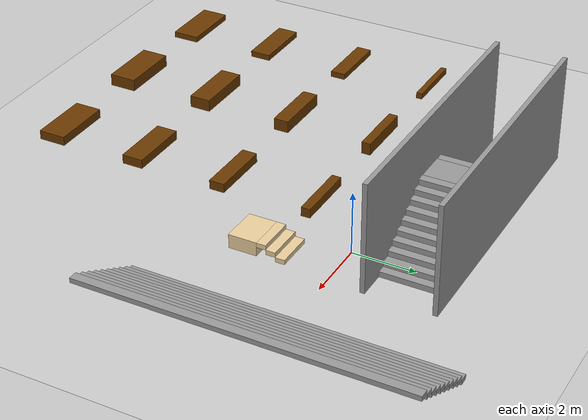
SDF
<?xml version="1.0" ?>
<sdf version="1.5">
    <world name="default">

        <physics type="ode">
            <max_step_size>0.0005</max_step_size>
            <real_time_factor>1</real_time_factor>
            <real_time_update_rate>2000</real_time_update_rate>
            <gravity>0 0 -9.81</gravity>
            <ode>
                <solver>
                    <type>quick</type>
                    <iters>50</iters>
                    <sor>1.3</sor>
                </solver>
                <constraints>
                    <cfm>0.0</cfm>
                    <erp>0.2</erp>
                    <contact_max_correcting_vel>10.0</contact_max_correcting_vel>
                    <contact_surface_layer>0.001</contact_surface_layer>
                </constraints>
            </ode>
        </physics>

        <scene>
            <sky>
                <clouds>
                    <speed>12</speed>
                </clouds>
            </sky>
        </scene>
        <!-- A global light source -->
        <include>
            <uri>model://sun</uri>
        </include>
        <!-- A ground plane -->
        <include>
            <uri>model://ground_plane</uri>
        </include>

        <!-- environment blocks, obstacles or stairs -->
        <model name="static_environment">
            <static>true</static>
            <link name="hurdle_20_1">
                <pose>-10 -2 0.1 0 0 0</pose>
                <collision name="static_box_collision">
                    <geometry>
                        <box>
                            <size>2 0.2 0.2</size>
                        </box>
                    </geometry>
                </collision>
                <visual name="static_box_visual">
                    <geometry>
                        <box>
                            <size>2 0.2 0.2</size>
                        </box>
                    </geometry>
                    <material>
                        <ambient>0.2 0.2 0.2 1.0</ambient>
                        <diffuse>.421 0.225 0.0 1.0</diffuse>
                    </material>
                </visual>
            </link>
            <link name="hurdle_20_2">
                <pose>-10 -5 0.1 0 0 0</pose>
                <collision name="static_box_collision">
                    <geometry>
                        <box>
                            <size>2 0.5 0.2</size>
                        </box>
                    </geometry>
                </collision>
                <visual name="static_box_visual">
                    <geometry>
                        <box>
                            <size>2 0.5 0.2</size>
                        </box>
                    </geometry>
                    <material>
                        <ambient>0.2 0.2 0.2 1.0</ambient>
                        <diffuse>.421 0.225 0.0 1.0</diffuse>
                    </material>
                </visual>
            </link>
            <link name="hurdle_20_3">
                <pose>-10 -8 0.1 0 0 0</pose>
                <collision name="static_box_collision">
                    <geometry>
                        <box>
                            <size>2 0.7 0.2</size>
                        </box>
                    </geometry>
                </collision>
                <visual name="static_box_visual">
                    <geometry>
                        <box>
                            <size>2 0.7 0.2</size>
                        </box>
                    </geometry>
                    <material>
                        <ambient>0.2 0.2 0.2 1.0</ambient>
                        <diffuse>.421 0.225 0.0 1.0</diffuse>
                    </material>
                </visual>
            </link>
            <link name="hurdle_20_4">
                <pose>-10 -11 0.1 0 0 0</pose>
                <collision name="static_box_collision">
                    <geometry>
                        <box>
                            <size>2 0.9 0.2</size>
                        </box>
                    </geometry>
                </collision>
                <visual name="static_box_visual">
                    <geometry>
                        <box>
                            <size>2 0.9 0.2</size>
                        </box>
                    </geometry>
                    <material>
                        <ambient>0.2 0.2 0.2 1.0</ambient>
                        <diffuse>.421 0.225 0.0 1.0</diffuse>
                    </material>
                </visual>
            </link>
            <link name="hurdle_30_1">
                <pose>-2 -2 0.15 0 0 0</pose>
                <collision name="static_box_collision">
                    <geometry>
                        <box>
                            <size>2 0.3 0.3</size>
                        </box>
                    </geometry>
                </collision>
                <visual name="static_box_visual">
                    <geometry>
                        <box>
                            <size>2 0.3 0.3</size>
                        </box>
                    </geometry>
                    <material>
                        <ambient>0.2 0.2 0.2 1.0</ambient>
                        <diffuse>.421 0.225 0.0 1.0</diffuse>
                    </material>
                </visual>
            </link>
            <link name="hurdle_30_2">
                <pose>-2 -5 0.15 0 0 0</pose>
                <collision name="static_box_collision">
                    <geometry>
                        <box>
                            <size>2 0.5 0.3</size>
                        </box>
                    </geometry>
                </collision>
                <visual name="static_box_visual">
                    <geometry>
                        <box>
                            <size>2 0.5 0.3</size>
                        </box>
                    </geometry>
                    <material>
                        <ambient>0.2 0.2 0.2 1.0</ambient>
                        <diffuse>.421 0.225 0.0 1.0</diffuse>
                    </material>
                </visual>
            </link>
            <link name="hurdle_30_3">
                <pose>-2 -8 0.15 0 0 0</pose>
                <collision name="static_box_collision">
                    <geometry>
                        <box>
                            <size>2 0.7 0.3</size>
                        </box>
                    </geometry>
                </collision>
                <visual name="static_box_visual">
                    <geometry>
                        <box>
                            <size>2 0.7 0.3</size>
                        </box>
                    </geometry>
                    <material>
                        <ambient>0.2 0.2 0.2 1.0</ambient>
                        <diffuse>.421 0.225 0.0 1.0</diffuse>
                    </material>
                </visual>
            </link>
            <link name="hurdle_30_4">
                <pose>-2 -11 0.15 0 0 0</pose>
                <collision name="static_box_collision">
                    <geometry>
                        <box>
                            <size>2 0.9 0.3</size>
                        </box>
                    </geometry>
                </collision>
                <visual name="static_box_visual">
                    <geometry>
                        <box>
                            <size>2 0.9 0.3</size>
                        </box>
                    </geometry>
                    <material>
                        <ambient>0.2 0.2 0.2 1.0</ambient>
                        <diffuse>.421 0.225 0.0 1.0</diffuse>
                    </material>
                </visual>
            </link>
            <link name="hurdle_40_1">
                <pose>-6 -2 0.2 0 0 0</pose>
                <collision name="static_box_collision">
                    <geometry>
                        <box>
                            <size>2 0.3 0.4</size>
                        </box>
                    </geometry>
                </collision>
                <visual name="static_box_visual">
                    <geometry>
                        <box>
                            <size>2 0.3 0.4</size>
                        </box>
                    </geometry>
                    <material>
                        <ambient>0.2 0.2 0.2 1.0</ambient>
                        <diffuse>.421 0.225 0.0 1.0</diffuse>
                    </material>
                </visual>
            </link>
            <link name="hurdle_40_2">
                <pose>-6 -5 0.2 0 0 0</pose>
                <collision name="static_box_collision">
                    <geometry>
                        <box>
                            <size>2 0.5 0.4</size>
                        </box>
                    </geometry>
                </collision>
                <visual name="static_box_visual">
                    <geometry>
                        <box>
                            <size>2 0.5 0.4</size>
                        </box>
                    </geometry>
                    <material>
                        <ambient>0.2 0.2 0.2 1.0</ambient>
                        <diffuse>.421 0.225 0.0 1.0</diffuse>
                    </material>
                </visual>
            </link>
            <link name="hurdle_40_3">
                <pose>-6 -8 0.2 0 0 0</pose>
                <collision name="static_box_collision">
                    <geometry>
                        <box>
                            <size>2 0.7 0.4</size>
                        </box>
                    </geometry>
                </collision>
                <visual name="static_box_visual">
                    <geometry>
                        <box>
                            <size>2 0.7 0.4</size>
                        </box>
                    </geometry>
                    <material>
                        <ambient>0.2 0.2 0.2 1.0</ambient>
                        <diffuse>.421 0.225 0.0 1.0</diffuse>
                    </material>
                </visual>
            </link>
            <link name="hurdle_40_4">
                <pose>-6 -11 0.2 0 0 0</pose>
                <collision name="static_box_collision">
                    <geometry>
                        <box>
                            <size>2 0.9 0.4</size>
                        </box>
                    </geometry>
                </collision>
                <visual name="static_box_visual">
                    <geometry>
                        <box>
                            <size>2 0.9 0.4</size>
                        </box>
                    </geometry>
                    <material>
                        <ambient>0.2 0.2 0.2 1.0</ambient>
                        <diffuse>.421 0.225 0.0 1.0</diffuse>
                    </material>
                </visual>
            </link>
            <link name='Stairs'>
                <pose>5 0 0 0 0 0</pose>
                <scale>1 1 1</scale>
                <visual name='Stairs_Visual_0'>
                    <pose>-1.26 -0 0.075 0 -0 1.5708</pose>
                    <geometry>
                        <box>
                            <size>10 0.28 0.15</size>
                        </box>
                    </geometry>
                    <material>
                        <script>
                            <uri>file://media/materials/scripts/gazebo.material</uri>
                            <name>Gazebo/Grey</name>
                        </script>
                        <ambient>1 1 1 1</ambient>
                    </material>
                    <meta>
                        <layer>0</layer>
                    </meta>
                </visual>
                <collision name='Stairs_Collision_0'>
                    <geometry>
                        <box>
                            <size>10 0.28 0.15</size>
                        </box>
                    </geometry>
                    <pose>-1.26 -0 0.075 0 -0 1.5708</pose>
                </collision>
                <visual name='Stairs_Visual_1'>
                    <pose>-0.98 -0 0.225 0 -0 1.5708</pose>
                    <geometry>
                        <box>
                            <size>10 0.28 0.15</size>
                        </box>
                    </geometry>
                    <material>
                        <script>
                            <uri>file://media/materials/scripts/gazebo.material</uri>
                            <name>Gazebo/Grey</name>
                        </script>
                        <ambient>1 1 1 1</ambient>
                    </material>
                    <meta>
                        <layer>0</layer>
                    </meta>
                </visual>
                <collision name='Stairs_Collision_1'>
                    <geometry>
                        <box>
                            <size>10 0.28 0.15</size>
                        </box>
                    </geometry>
                    <pose>-0.98 -0 0.225 0 -0 1.5708</pose>
                </collision>
                <visual name='Stairs_Visual_2'>
                    <pose>-0.7 -0 0.375 0 -0 1.5708</pose>
                    <geometry>
                        <box>
                            <size>10 0.28 0.15</size>
                        </box>
                    </geometry>
                    <material>
                        <script>
                            <uri>file://media/materials/scripts/gazebo.material</uri>
                            <name>Gazebo/Grey</name>
                        </script>
                        <ambient>1 1 1 1</ambient>
                    </material>
                    <meta>
                        <layer>0</layer>
                    </meta>
                </visual>
                <collision name='Stairs_Collision_2'>
                    <geometry>
                        <box>
                            <size>10 0.28 0.15</size>
                        </box>
                    </geometry>
                    <pose>-0.7 -0 0.375 0 -0 1.5708</pose>
                </collision>
                <visual name='Stairs_Visual_3'>
                    <pose>-0.42 -0 0.525 0 -0 1.5708</pose>
                    <geometry>
                        <box>
                            <size>10 0.28 0.15</size>
                        </box>
                    </geometry>
                    <material>
                        <script>
                            <uri>file://media/materials/scripts/gazebo.material</uri>
                            <name>Gazebo/Grey</name>
                        </script>
                        <ambient>1 1 1 1</ambient>
                    </material>
                    <meta>
                        <layer>0</layer>
                    </meta>
                </visual>
                <collision name='Stairs_Collision_3'>
                    <geometry>
                        <box>
                            <size>10 0.28 0.15</size>
                        </box>
                    </geometry>
                    <pose>-0.42 -0 0.525 0 -0 1.5708</pose>
                </collision>
                <visual name='Stairs_Visual_4'>
                    <pose>-0.14 -0 0.675 0 -0 1.5708</pose>
                    <geometry>
                        <box>
                            <size>10 0.28 0.15</size>
                        </box>
                    </geometry>
                    <material>
                        <script>
                            <uri>file://media/materials/scripts/gazebo.material</uri>
                            <name>Gazebo/Grey</name>
                        </script>
                        <ambient>1 1 1 1</ambient>
                    </material>
                    <meta>
                        <layer>0</layer>
                    </meta>
                </visual>
                <collision name='Stairs_Collision_4'>
                    <geometry>
                        <box>
                            <size>10 0.28 0.15</size>
                        </box>
                    </geometry>
                    <pose>-0.14 -0 0.675 0 -0 1.5708</pose>
                </collision>
                <visual name='Stairs_Visual_5'>
                    <pose>0.14 0 0.825 0 -0 1.5708</pose>
                    <geometry>
                        <box>
                            <size>10 0.28 0.15</size>
                        </box>
                    </geometry>
                    <material>
                        <script>
                            <uri>file://media/materials/scripts/gazebo.material</uri>
                            <name>Gazebo/Grey</name>
                        </script>
                        <ambient>1 1 1 1</ambient>
                    </material>
                    <meta>
                        <layer>0</layer>
                    </meta>
                </visual>
                <collision name='Stairs_Collision_5'>
                    <geometry>
                        <box>
                            <size>10 0.28 0.15</size>
                        </box>
                    </geometry>
                    <pose>0.14 0 0.825 0 -0 1.5708</pose>
                </collision>
                <visual name='Stairs_Visual_6'>
                    <pose>0.42 0 0.975 0 -0 1.5708</pose>
                    <geometry>
                        <box>
                            <size>10 0.28 0.15</size>
                        </box>
                    </geometry>
                    <material>
                        <script>
                            <uri>file://media/materials/scripts/gazebo.material</uri>
                            <name>Gazebo/Grey</name>
                        </script>
                        <ambient>1 1 1 1</ambient>
                    </material>
                    <meta>
                        <layer>0</layer>
                    </meta>
                </visual>
                <collision name='Stairs_Collision_6'>
                    <geometry>
                        <box>
                            <size>10 0.28 0.15</size>
                        </box>
                    </geometry>
                    <pose>0.42 0 0.975 0 -0 1.5708</pose>
                </collision>
                <visual name='Stairs_Visual_7'>
                    <pose>0.7 0 1.125 0 -0 1.5708</pose>
                    <geometry>
                        <box>
                            <size>10 0.28 0.15</size>
                        </box>
                    </geometry>
                    <material>
                        <script>
                            <uri>file://media/materials/scripts/gazebo.material</uri>
                            <name>Gazebo/Grey</name>
                        </script>
                        <ambient>1 1 1 1</ambient>
                    </material>
                    <meta>
                        <layer>0</layer>
                    </meta>
                </visual>
                <collision name='Stairs_Collision_7'>
                    <geometry>
                        <box>
                            <size>10 0.28 0.15</size>
                        </box>
                    </geometry>
                    <pose>0.7 0 1.125 0 -0 1.5708</pose>
                </collision>
                <visual name='Stairs_Visual_8'>
                    <pose>0.98 0 1.275 0 -0 1.5708</pose>
                    <geometry>
                        <box>
                            <size>10 0.28 0.15</size>
                        </box>
                    </geometry>
                    <material>
                        <script>
                            <uri>file://media/materials/scripts/gazebo.material</uri>
                            <name>Gazebo/Grey</name>
                        </script>
                        <ambient>1 1 1 1</ambient>
                    </material>
                    <meta>
                        <layer>0</layer>
                    </meta>
                </visual>
                <collision name='Stairs_Collision_8'>
                    <geometry>
                        <box>
                            <size>10 0.28 0.15</size>
                        </box>
                    </geometry>
                    <pose>0.98 0 1.275 0 -0 1.5708</pose>
                </collision>
                <visual name='Stairs_Visual_9'>
                    <pose>1.26 0 1.425 0 -0 1.5708</pose>
                    <geometry>
                        <box>
                            <size>10 0.28 0.15</size>
                        </box>
                    </geometry>
                    <material>
                        <script>
                            <uri>file://media/materials/scripts/gazebo.material</uri>
                            <name>Gazebo/Grey</name>
                        </script>
                        <ambient>1 1 1 1</ambient>
                    </material>
                    <meta>
                        <layer>0</layer>
                    </meta>
                </visual>
                <collision name='Stairs_Collision_9'>
                    <geometry>
                        <box>
                            <size>10 0.28 0.15</size>
                        </box>
                    </geometry>
                    <pose>1.26 0 1.425 0 -0 1.5708</pose>
                </collision>
            </link>
            <link name='Stairs_1'>
                <visual name='Stairs_1_Visual_0'>
                    <pose>0.802848 -1.53604 0.075 0 -0 0</pose>
                    <geometry>
                        <box>
                            <size>1.2 0.3 0.15</size>
                        </box>
                    </geometry>
                    <material>
                        <script>
                            <uri>file://media/materials/scripts/gazebo.material</uri>
                            <name>Gazebo/Grey</name>
                        </script>
                        <ambient>0.921569 0.807843 0.615686 1</ambient>
                    </material>
                    <meta>
                        <layer>0</layer>
                    </meta>
                </visual>
                <collision name='Stairs_1_Collision_0'>
                    <geometry>
                        <box>
                            <size>1.2 0.3 0.15</size>
                        </box>
                    </geometry>
                    <pose>0.802848 -1.53604 0.075 0 -0 0</pose>
                </collision>
                <visual name='Stairs_1_Visual_1'>
                    <pose>0.802848 -1.83604 0.225 0 -0 0</pose>
                    <geometry>
                        <box>
                            <size>1.2 0.3 0.15</size>
                        </box>
                    </geometry>
                    <material>
                        <script>
                            <uri>file://media/materials/scripts/gazebo.material</uri>
                            <name>Gazebo/Grey</name>
                        </script>
                        <ambient>0.921569 0.807843 0.615686 1</ambient>
                    </material>
                    <meta>
                        <layer>0</layer>
                    </meta>
                </visual>
                <collision name='Stairs_1_Collision_1'>
                    <geometry>
                        <box>
                            <size>1.2 0.3 0.15</size>
                        </box>
                    </geometry>
                    <pose>0.802848 -1.83604 0.225 0 -0 0</pose>
                </collision>
                <visual name='Stairs_1_Visual_2'>
                    <pose>0.802848 -2.13604 0.375 0 -0 0</pose>
                    <geometry>
                        <box>
                            <size>1.2 0.3 0.15</size>
                        </box>
                    </geometry>
                    <material>
                        <script>
                            <uri>file://media/materials/scripts/gazebo.material</uri>
                            <name>Gazebo/Grey</name>
                        </script>
                        <ambient>0.921569 0.807843 0.615686 1</ambient>
                    </material>
                    <meta>
                        <layer>0</layer>
                    </meta>
                </visual>
                <collision name='Stairs_1_Collision_2'>
                    <geometry>
                        <box>
                            <size>1.2 0.3 0.15</size>
                        </box>
                    </geometry>
                    <pose>0.802848 -2.13604 0.375 0 -0 0</pose>
                </collision>
            </link>
            <link name='Stairs_3'>
                <visual name='Stairs_3_Visual_0'>
                    <pose>0.540349 2.16396 0.09 0 0 -1.5708</pose>
                    <geometry>
                        <box>
                            <size>2 0.275 0.18</size>
                        </box>
                    </geometry>
                    <material>
                        <script>
                            <uri>file://media/materials/scripts/gazebo.material</uri>
                            <name>Gazebo/Grey</name>
                        </script>
                        <ambient>1 1 1 1</ambient>
                    </material>
                    <meta>
                        <layer>0</layer>
                    </meta>
                </visual>
                <collision name='Stairs_3_Collision_0'>
                    <geometry>
                        <box>
                            <size>2 0.275 0.18</size>
                        </box>
                    </geometry>
                    <pose>0.540349 2.16396 0.09 0 0 -1.5708</pose>
                </collision>
                <visual name='Stairs_3_Visual_1'>
                    <pose>0.265348 2.16396 0.27 0 0 -1.5708</pose>
                    <geometry>
                        <box>
                            <size>2 0.275 0.18</size>
                        </box>
                    </geometry>
                    <material>
                        <script>
                            <uri>file://media/materials/scripts/gazebo.material</uri>
                            <name>Gazebo/Grey</name>
                        </script>
                        <ambient>1 1 1 1</ambient>
                    </material>
                    <meta>
                        <layer>0</layer>
                    </meta>
                </visual>
                <collision name='Stairs_3_Collision_1'>
                    <geometry>
                        <box>
                            <size>2 0.275 0.18</size>
                        </box>
                    </geometry>
                    <pose>0.265348 2.16396 0.27 0 0 -1.5708</pose>
                </collision>
                <visual name='Stairs_3_Visual_2'>
                    <pose>-0.009652 2.16396 0.45 0 0 -1.5708</pose>
                    <geometry>
                        <box>
                            <size>2 0.275 0.18</size>
                        </box>
                    </geometry>
                    <material>
                        <script>
                            <uri>file://media/materials/scripts/gazebo.material</uri>
                            <name>Gazebo/Grey</name>
                        </script>
                        <ambient>1 1 1 1</ambient>
                    </material>
                    <meta>
                        <layer>0</layer>
                    </meta>
                </visual>
                <collision name='Stairs_3_Collision_2'>
                    <geometry>
                        <box>
                            <size>2 0.275 0.18</size>
                        </box>
                    </geometry>
                    <pose>-0.009652 2.16396 0.45 0 0 -1.5708</pose>
                </collision>
                <visual name='Stairs_3_Visual_3'>
                    <pose>-0.284652 2.16396 0.63 0 0 -1.5708</pose>
                    <geometry>
                        <box>
                            <size>2 0.275 0.18</size>
                        </box>
                    </geometry>
                    <material>
                        <script>
                            <uri>file://media/materials/scripts/gazebo.material</uri>
                            <name>Gazebo/Grey</name>
                        </script>
                        <ambient>1 1 1 1</ambient>
                    </material>
                    <meta>
                        <layer>0</layer>
                    </meta>
                </visual>
                <collision name='Stairs_3_Collision_3'>
                    <geometry>
                        <box>
                            <size>2 0.275 0.18</size>
                        </box>
                    </geometry>
                    <pose>-0.284652 2.16396 0.63 0 0 -1.5708</pose>
                </collision>
                <visual name='Stairs_3_Visual_4'>
                    <pose>-0.559652 2.16396 0.81 0 0 -1.5708</pose>
                    <geometry>
                        <box>
                            <size>2 0.275 0.18</size>
                        </box>
                    </geometry>
                    <material>
                        <script>
                            <uri>file://media/materials/scripts/gazebo.material</uri>
                            <name>Gazebo/Grey</name>
                        </script>
                        <ambient>1 1 1 1</ambient>
                    </material>
                    <meta>
                        <layer>0</layer>
                    </meta>
                </visual>
                <collision name='Stairs_3_Collision_4'>
                    <geometry>
                        <box>
                            <size>2 0.275 0.18</size>
                        </box>
                    </geometry>
                    <pose>-0.559652 2.16396 0.81 0 0 -1.5708</pose>
                </collision>
                <visual name='Stairs_3_Visual_5'>
                    <pose>-0.834651 2.16396 0.99 0 0 -1.5708</pose>
                    <geometry>
                        <box>
                            <size>2 0.275 0.18</size>
                        </box>
                    </geometry>
                    <material>
                        <script>
                            <uri>file://media/materials/scripts/gazebo.material</uri>
                            <name>Gazebo/Grey</name>
                        </script>
                        <ambient>1 1 1 1</ambient>
                    </material>
                    <meta>
                        <layer>0</layer>
                    </meta>
                </visual>
                <collision name='Stairs_3_Collision_5'>
                    <geometry>
                        <box>
                            <size>2 0.275 0.18</size>
                        </box>
                    </geometry>
                    <pose>-0.834651 2.16396 0.99 0 0 -1.5708</pose>
                </collision>
                <visual name='Stairs_3_Visual_6'>
                    <pose>-1.10965 2.16396 1.17 0 0 -1.5708</pose>
                    <geometry>
                        <box>
                            <size>2 0.275 0.18</size>
                        </box>
                    </geometry>
                    <material>
                        <script>
                            <uri>file://media/materials/scripts/gazebo.material</uri>
                            <name>Gazebo/Grey</name>
                        </script>
                        <ambient>1 1 1 1</ambient>
                    </material>
                    <meta>
                        <layer>0</layer>
                    </meta>
                </visual>
                <collision name='Stairs_3_Collision_6'>
                    <geometry>
                        <box>
                            <size>2 0.275 0.18</size>
                        </box>
                    </geometry>
                    <pose>-1.10965 2.16396 1.17 0 0 -1.5708</pose>
                </collision>
                <visual name='Stairs_3_Visual_7'>
                    <pose>-1.38465 2.16396 1.35 0 0 -1.5708</pose>
                    <geometry>
                        <box>
                            <size>2 0.275 0.18</size>
                        </box>
                    </geometry>
                    <material>
                        <script>
                            <uri>file://media/materials/scripts/gazebo.material</uri>
                            <name>Gazebo/Grey</name>
                        </script>
                        <ambient>1 1 1 1</ambient>
                    </material>
                    <meta>
                        <layer>0</layer>
                    </meta>
                </visual>
                <collision name='Stairs_3_Collision_7'>
                    <geometry>
                        <box>
                            <size>2 0.275 0.18</size>
                        </box>
                    </geometry>
                    <pose>-1.38465 2.16396 1.35 0 0 -1.5708</pose>
                </collision>
                <visual name='Stairs_3_Visual_8'>
                    <pose>-1.65965 2.16396 1.53 0 0 -1.5708</pose>
                    <geometry>
                        <box>
                            <size>2 0.275 0.18</size>
                        </box>
                    </geometry>
                    <material>
                        <script>
                            <uri>file://media/materials/scripts/gazebo.material</uri>
                            <name>Gazebo/Grey</name>
                        </script>
                        <ambient>1 1 1 1</ambient>
                    </material>
                    <meta>
                        <layer>0</layer>
                    </meta>
                </visual>
                <collision name='Stairs_3_Collision_8'>
                    <geometry>
                        <box>
                            <size>2 0.275 0.18</size>
                        </box>
                    </geometry>
                    <pose>-1.65965 2.16396 1.53 0 0 -1.5708</pose>
                </collision>
                <visual name='Stairs_3_Visual_9'>
                    <pose>-1.93465 2.16396 1.71 0 0 -1.5708</pose>
                    <geometry>
                        <box>
                            <size>2 0.275 0.18</size>
                        </box>
                    </geometry>
                    <material>
                        <script>
                            <uri>file://media/materials/scripts/gazebo.material</uri>
                            <name>Gazebo/Grey</name>
                        </script>
                        <ambient>1 1 1 1</ambient>
                    </material>
                    <meta>
                        <layer>0</layer>
                    </meta>
                </visual>
                <collision name='Stairs_3_Collision_9'>
                    <geometry>
                        <box>
                            <size>2 0.275 0.18</size>
                        </box>
                    </geometry>
                    <pose>-1.93465 2.16396 1.71 0 0 -1.5708</pose>
                </collision>
            </link>
            <link name='Stairs_5'>
                <visual name='Stairs_5_Visual_0'>
                    <pose>-5.66535 2.18604 0.09 0 -0 1.5708</pose>
                    <geometry>
                        <box>
                            <size>2 0.275 0.18</size>
                        </box>
                    </geometry>
                    <material>
                        <script>
                            <uri>file://media/materials/scripts/gazebo.material</uri>
                            <name>Gazebo/Grey</name>
                        </script>
                        <ambient>1 1 1 1</ambient>
                    </material>
                    <meta>
                        <layer>0</layer>
                    </meta>
                </visual>
                <collision name='Stairs_5_Collision_0'>
                    <geometry>
                        <box>
                            <size>2 0.275 0.18</size>
                        </box>
                    </geometry>
                    <pose>-5.66535 2.18604 0.09 0 -0 1.5708</pose>
                </collision>
                <visual name='Stairs_5_Visual_1'>
                    <pose>-5.39035 2.18604 0.27 0 -0 1.5708</pose>
                    <geometry>
                        <box>
                            <size>2 0.275 0.18</size>
                        </box>
                    </geometry>
                    <material>
                        <script>
                            <uri>file://media/materials/scripts/gazebo.material</uri>
                            <name>Gazebo/Grey</name>
                        </script>
                        <ambient>1 1 1 1</ambient>
                    </material>
                    <meta>
                        <layer>0</layer>
                    </meta>
                </visual>
                <collision name='Stairs_5_Collision_1'>
                    <geometry>
                        <box>
                            <size>2 0.275 0.18</size>
                        </box>
                    </geometry>
                    <pose>-5.39035 2.18604 0.27 0 -0 1.5708</pose>
                </collision>
                <visual name='Stairs_5_Visual_2'>
                    <pose>-5.11535 2.18604 0.45 0 -0 1.5708</pose>
                    <geometry>
                        <box>
                            <size>2 0.275 0.18</size>
                        </box>
                    </geometry>
                    <material>
                        <script>
                            <uri>file://media/materials/scripts/gazebo.material</uri>
                            <name>Gazebo/Grey</name>
                        </script>
                        <ambient>1 1 1 1</ambient>
                    </material>
                    <meta>
                        <layer>0</layer>
                    </meta>
                </visual>
                <collision name='Stairs_5_Collision_2'>
                    <geometry>
                        <box>
                            <size>2 0.275 0.18</size>
                        </box>
                    </geometry>
                    <pose>-5.11535 2.18604 0.45 0 -0 1.5708</pose>
                </collision>
                <visual name='Stairs_5_Visual_3'>
                    <pose>-4.84035 2.18604 0.63 0 -0 1.5708</pose>
                    <geometry>
                        <box>
                            <size>2 0.275 0.18</size>
                        </box>
                    </geometry>
                    <material>
                        <script>
                            <uri>file://media/materials/scripts/gazebo.material</uri>
                            <name>Gazebo/Grey</name>
                        </script>
                        <ambient>1 1 1 1</ambient>
                    </material>
                    <meta>
                        <layer>0</layer>
                    </meta>
                </visual>
                <collision name='Stairs_5_Collision_3'>
                    <geometry>
                        <box>
                            <size>2 0.275 0.18</size>
                        </box>
                    </geometry>
                    <pose>-4.84035 2.18604 0.63 0 -0 1.5708</pose>
                </collision>
                <visual name='Stairs_5_Visual_4'>
                    <pose>-4.56535 2.18604 0.81 0 -0 1.5708</pose>
                    <geometry>
                        <box>
                            <size>2 0.275 0.18</size>
                        </box>
                    </geometry>
                    <material>
                        <script>
                            <uri>file://media/materials/scripts/gazebo.material</uri>
                            <name>Gazebo/Grey</name>
                        </script>
                        <ambient>1 1 1 1</ambient>
                    </material>
                    <meta>
                        <layer>0</layer>
                    </meta>
                </visual>
                <collision name='Stairs_5_Collision_4'>
                    <geometry>
                        <box>
                            <size>2 0.275 0.18</size>
                        </box>
                    </geometry>
                    <pose>-4.56535 2.18604 0.81 0 -0 1.5708</pose>
                </collision>
                <visual name='Stairs_5_Visual_5'>
                    <pose>-4.29035 2.18604 0.99 0 -0 1.5708</pose>
                    <geometry>
                        <box>
                            <size>2 0.275 0.18</size>
                        </box>
                    </geometry>
                    <material>
                        <script>
                            <uri>file://media/materials/scripts/gazebo.material</uri>
                            <name>Gazebo/Grey</name>
                        </script>
                        <ambient>1 1 1 1</ambient>
                    </material>
                    <meta>
                        <layer>0</layer>
                    </meta>
                </visual>
                <collision name='Stairs_5_Collision_5'>
                    <geometry>
                        <box>
                            <size>2 0.275 0.18</size>
                        </box>
                    </geometry>
                    <pose>-4.29035 2.18604 0.99 0 -0 1.5708</pose>
                </collision>
                <visual name='Stairs_5_Visual_6'>
                    <pose>-4.01535 2.18604 1.17 0 -0 1.5708</pose>
                    <geometry>
                        <box>
                            <size>2 0.275 0.18</size>
                        </box>
                    </geometry>
                    <material>
                        <script>
                            <uri>file://media/materials/scripts/gazebo.material</uri>
                            <name>Gazebo/Grey</name>
                        </script>
                        <ambient>1 1 1 1</ambient>
                    </material>
                    <meta>
                        <layer>0</layer>
                    </meta>
                </visual>
                <collision name='Stairs_5_Collision_6'>
                    <geometry>
                        <box>
                            <size>2 0.275 0.18</size>
                        </box>
                    </geometry>
                    <pose>-4.01535 2.18604 1.17 0 -0 1.5708</pose>
                </collision>
                <visual name='Stairs_5_Visual_7'>
                    <pose>-3.74035 2.18604 1.35 0 -0 1.5708</pose>
                    <geometry>
                        <box>
                            <size>2 0.275 0.18</size>
                        </box>
                    </geometry>
                    <material>
                        <script>
                            <uri>file://media/materials/scripts/gazebo.material</uri>
                            <name>Gazebo/Grey</name>
                        </script>
                        <ambient>1 1 1 1</ambient>
                    </material>
                    <meta>
                        <layer>0</layer>
                    </meta>
                </visual>
                <collision name='Stairs_5_Collision_7'>
                    <geometry>
                        <box>
                            <size>2 0.275 0.18</size>
                        </box>
                    </geometry>
                    <pose>-3.74035 2.18604 1.35 0 -0 1.5708</pose>
                </collision>
                <visual name='Stairs_5_Visual_8'>
                    <pose>-3.46535 2.18604 1.53 0 -0 1.5708</pose>
                    <geometry>
                        <box>
                            <size>2 0.275 0.18</size>
                        </box>
                    </geometry>
                    <material>
                        <script>
                            <uri>file://media/materials/scripts/gazebo.material</uri>
                            <name>Gazebo/Grey</name>
                        </script>
                        <ambient>1 1 1 1</ambient>
                    </material>
                    <meta>
                        <layer>0</layer>
                    </meta>
                </visual>
                <collision name='Stairs_5_Collision_8'>
                    <geometry>
                        <box>
                            <size>2 0.275 0.18</size>
                        </box>
                    </geometry>
                    <pose>-3.46535 2.18604 1.53 0 -0 1.5708</pose>
                </collision>
                <visual name='Stairs_5_Visual_9'>
                    <pose>-3.19035 2.18604 1.71 0 -0 1.5708</pose>
                    <geometry>
                        <box>
                            <size>2 0.275 0.18</size>
                        </box>
                    </geometry>
                    <material>
                        <script>
                            <uri>file://media/materials/scripts/gazebo.material</uri>
                            <name>Gazebo/Grey</name>
                        </script>
                        <ambient>1 1 1 1</ambient>
                    </material>
                    <meta>
                        <layer>0</layer>
                    </meta>
                </visual>
                <collision name='Stairs_5_Collision_9'>
                    <geometry>
                        <box>
                            <size>2 0.275 0.18</size>
                        </box>
                    </geometry>
                    <pose>-3.19035 2.18604 1.71 0 -0 1.5708</pose>
                </collision>
            </link>
            <link name='Wall_1'>
                <collision name='Wall_1_Collision'>
                    <geometry>
                        <box>
                            <size>1.2 0.9 0.45</size>
                        </box>
                    </geometry>
                    <pose>0 0 0.225 0 -0 0</pose>
                </collision>
                <visual name='Wall_1_Visual'>
                    <pose>0 0 0.225 0 -0 0</pose>
                    <geometry>
                        <box>
                            <size>1.2 0.9 0.45</size>
                        </box>
                    </geometry>
                    <material>
                        <script>
                            <uri>file://media/materials/scripts/gazebo.material</uri>
                            <name>Gazebo/Grey</name>
                        </script>
                        <ambient>0.921569 0.807843 0.615686 1</ambient>
                    </material>
                    <meta>
                        <layer>0</layer>
                    </meta>
                </visual>
                <pose>0.802848 -2.73604 0 0 -0 0</pose>
            </link>
            <link name='Wall_3'>
                <collision name='Wall_3_Collision'>
                    <geometry>
                        <box>
                            <size>2 1 1.8</size>
                        </box>
                    </geometry>
                    <pose>0 0 0.9 0 -0 0</pose>
                </collision>
                <visual name='Wall_3_Visual'>
                    <pose>0 0 0.9 0 -0 0</pose>
                    <geometry>
                        <box>
                            <size>2 1 1.8</size>
                        </box>
                    </geometry>
                    <material>
                        <script>
                            <uri>file://media/materials/scripts/gazebo.material</uri>
                            <name>Gazebo/Grey</name>
                        </script>
                        <ambient>1 1 1 1</ambient>
                    </material>
                    <meta>
                        <layer>0</layer>
                    </meta>
                </visual>
                <pose>-2.57015 2.17596 0 0 -0 -1.5708</pose>
            </link>
            <link name='Wall_0'>
                <collision name='Wall_0_Collision'>
                    <geometry>
                        <box>
                            <size>9.15 0.15 3.5</size>
                        </box>
                    </geometry>
                    <pose>0 0 1.75 0 -0 0</pose>
                </collision>
                <visual name='Wall_0_Visual'>
                    <pose>0 0 1.75 0 -0 0</pose>
                    <geometry>
                        <box>
                            <size>9.15 0.15 3.5</size>
                        </box>
                    </geometry>
                    <material>
                        <script>
                            <uri>file://media/materials/scripts/gazebo.material</uri>
                            <name>Gazebo/Grey</name>
                        </script>
                        <ambient>1 1 1 1</ambient>
                    </material>
                    <meta>
                        <layer>0</layer>
                    </meta>
                </visual>
                <pose>-3 1.1 0 0 -0 0</pose>
            </link>
            <link name='Wall_8'>
                <collision name='Wall_8_Collision'>
                    <geometry>
                        <box>
                            <size>9.15 0.15 3.5</size>
                        </box>
                    </geometry>
                    <pose>0 0 1.75 0 -0 0</pose>
                </collision>
                <visual name='Wall_8_Visual'>
                    <pose>0 0 1.75 0 -0 0</pose>
                    <geometry>
                        <box>
                            <size>9.15 0.15 3.5</size>
                        </box>
                    </geometry>
                    <material>
                        <script>
                            <uri>file://media/materials/scripts/gazebo.material</uri>
                            <name>Gazebo/Grey</name>
                        </script>
                        <ambient>1 1 1 1</ambient>
                    </material>
                    <meta>
                        <layer>0</layer>
                    </meta>
                </visual>
                <pose>-3 3.25815 0 0 -0 3.14159</pose>
            </link>
        </model>

    </world>
</sdf>
